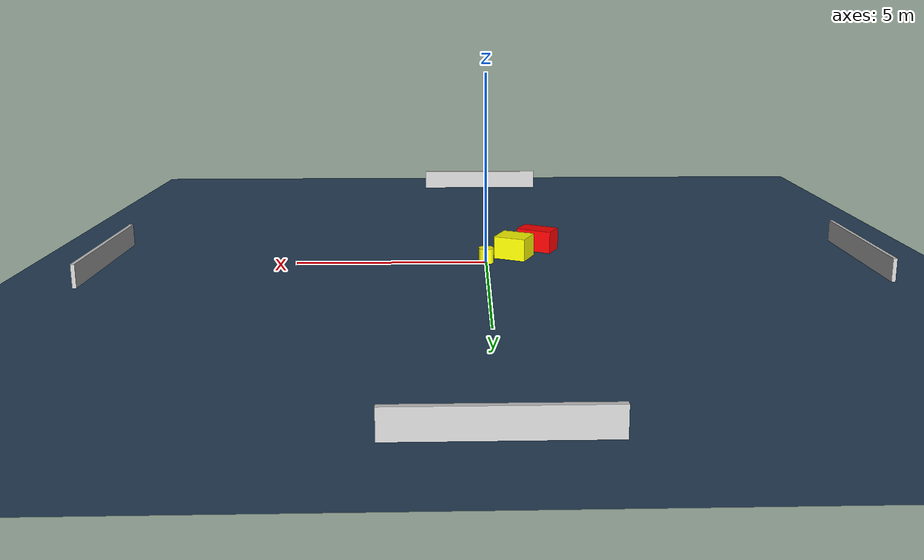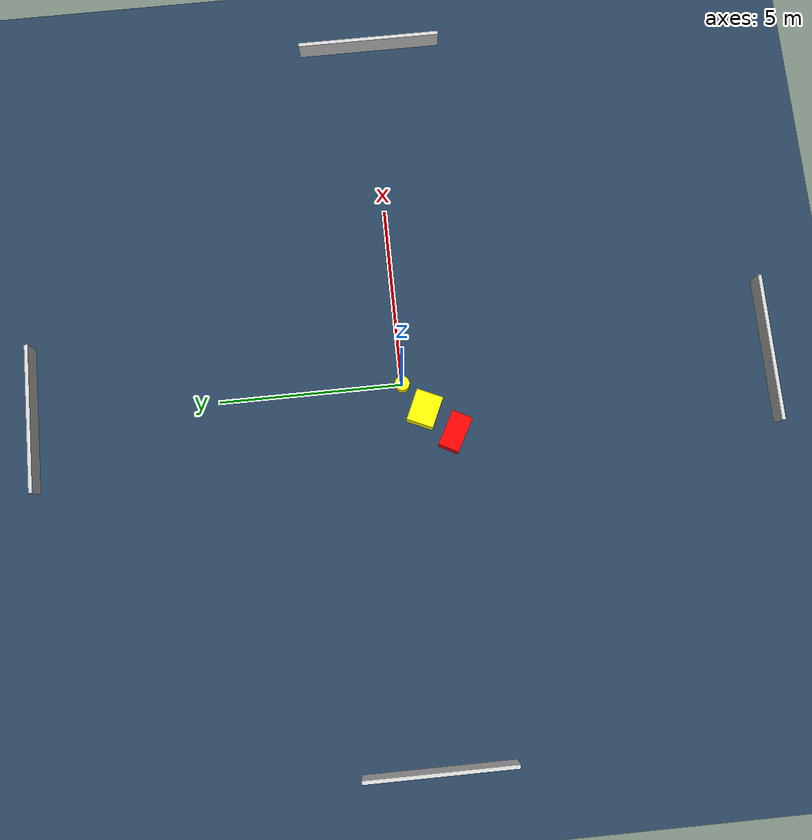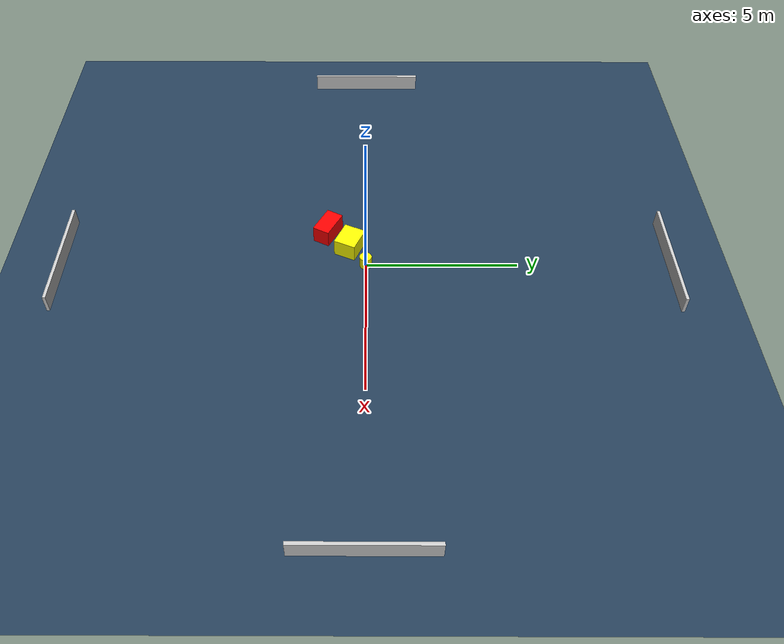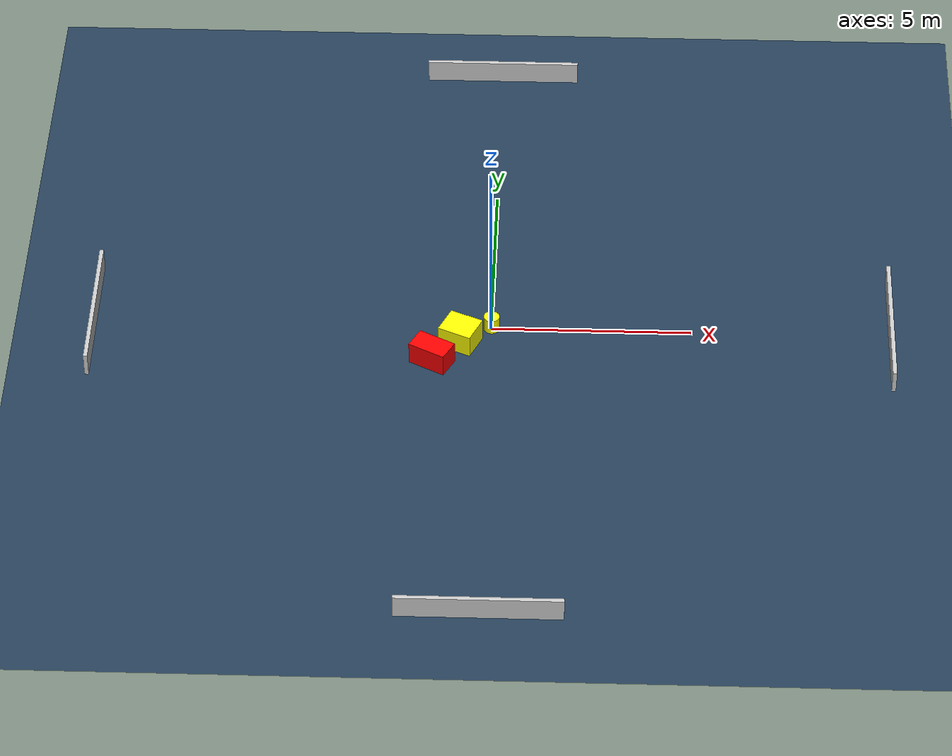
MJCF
<?xml version="1.0" ?>
<mujoco model="generated_environment">
  <option timestep="0.01" integrator="RK4" cone="elliptic"/>
  <default>
    <geom density="1"/>
  </default>
  <asset>
    <texture builtin="gradient" height="3072" name="skybox" rgb1="0.3 0.5 0.7" rgb2="0 0 0" type="skybox" width="512"/>
    <texture builtin="checker" height="300" name="groundplane" rgb1="0.2 0.3 0.4" rgb2="0.1 0.2 0.3" type="2d" width="300"/>
    <material name="groundplane" reflectance="0.2" texrepeat="5 5" texture="groundplane"/>
  </asset>
  <worldbody>
    <light dir="0 0 -1" directional="true" pos="0 0 1.5"/>
    <geom condim="3" friction="0.5 0.005 0.001" material="groundplane" name="floor" pos="0 0 0" size="0 0 0.05" type="plane"/>
    <body name="walls">
      <geom name="wall_1" condim="4" pos="-10.0 0.0 0.3" rgba="0.800000011920929 0.800000011920929 0.800000011920929 1.0" size="0.05 2.0 0.3" type="box"/>
      <geom name="wall_2" condim="4" pos="10.0 0.0 0.3" rgba="0.800000011920929 0.800000011920929 0.800000011920929 1.0" size="0.05 2.0 0.3" type="box"/>
      <geom name="wall_3" condim="4" pos="0.0 -10.0 0.3" rgba="0.800000011920929 0.800000011920929 0.800000011920929 1.0" size="2.0 0.05 0.3" type="box"/>
      <geom name="wall_4" condim="4" pos="0.0 10.0 0.3" rgba="0.800000011920929 0.800000011920929 0.800000011920929 1.0" size="2.0 0.05 0.3" type="box"/>
    </body>
    <body name="robot">
      <joint name="joint_x" type="slide" pos="0 0 0" axis="1 0 0"/>
      <joint name="joint_y" type="slide" pos="0 0 0" axis="0 1 0"/>
      <geom name="robot" type="cylinder" pos="0.0 0.0 0.2" size="0.2 0.2 0.0" mass="5.0" friction="1.0 0.005 0.0001" condim="4" rgba="1.0 1.0 0.0 1.0"/>
    </body>
    <body name="obstacle_1_movable">
      <geom name="obstacle_1_movable" condim="4" pos="-0.7633633186289217 -0.5331331749518627 0.3" euler="0 0 155.63339736884808" friction="0.0 0.005 0.001" rgba="1.0 1.0 0.0 1.0" size="0.435103548565132 0.36906515354075997 0.3" type="box" mass="0.1"/>
      <joint type="free"/>
    </body>
    <body name="obstacle_2_static">
      <geom name="obstacle_2_static" condim="4" pos="-1.4510620469059252 -1.2797697603937443 0.3" euler="0 0 242.02095722664507" friction="0.0 0.005 0.001" rgba="1.0 0.0 0.0 1.0" size="0.28821617259418897 0.4944305626704837 0.3" type="box"/>
    </body>
  </worldbody>
  <actuator>
    <motor name="actuator_x" joint="joint_x" gear="1" ctrlrange="-1 1"/>
    <motor name="actuator_y" joint="joint_y" gear="1" ctrlrange="-1 1"/>
  </actuator>
</mujoco>
